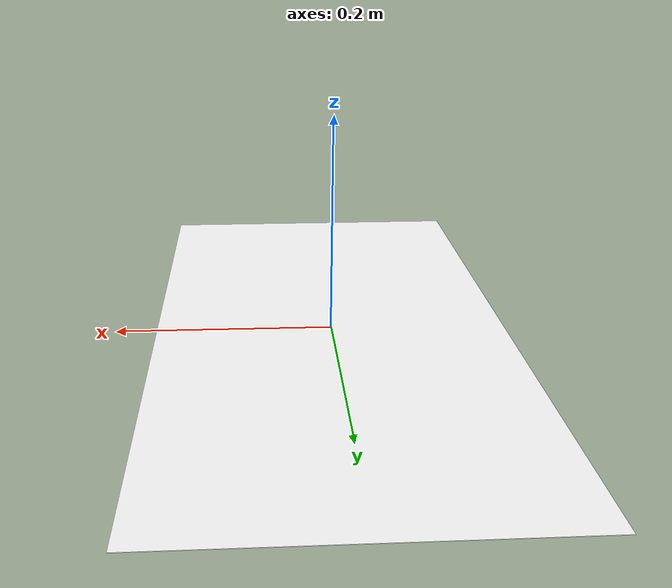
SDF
<?xml version='1.0'?>
<sdf version='1.6'>
  <model name='race_track3'>
    <static>true</static>
    <link name='link'>
      <visual name='visual'>
        <geometry>
          <box>
            <size>0.325 0.62 0.000553</size>
          </box>
        </geometry>
        <material>
          <script>
            <name>RaceTrack3/track3</name>
	    <uri>model://racetrack3/materials/scripts</uri>
            <uri>model://racetrack3/materials/textures</uri>
          </script>
          <ambient>1 1 1 1</ambient>
          <diffuse>1 1 1 1</diffuse>
          <specular>0.01 0.01 0.01 1</specular>
          <emissive>1 1 1 1</emissive>
        </material>
        <transparency>0</transparency>
      </visual>
      <collision name='collision'>
        <geometry>
          <box>
            <size>0.325 0.62 0.000553</size>
          </box>
        </geometry>
	<surface>
          <friction>
            <ode>
              <mu>100</mu>
              <mu2>50</mu2>
            </ode>
          </friction>
        </surface>
      </collision>
    </link>
  </model>
</sdf>
